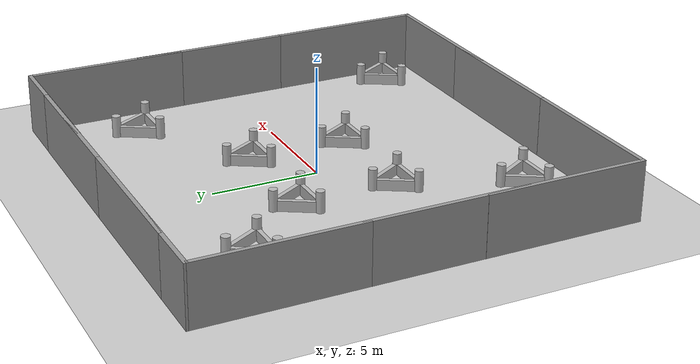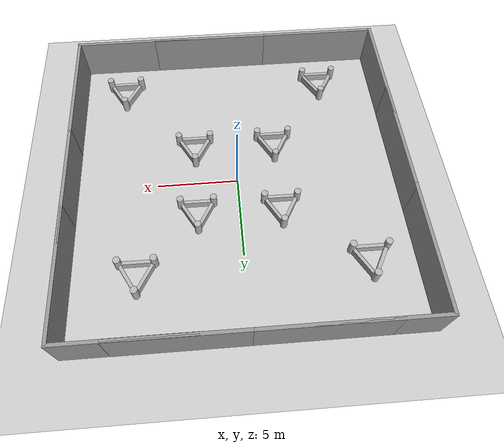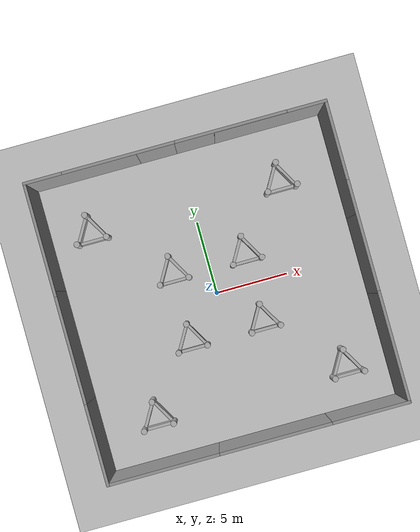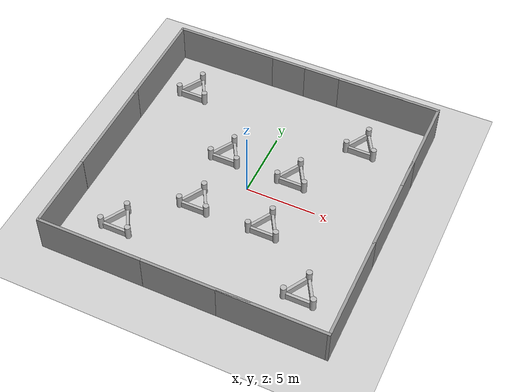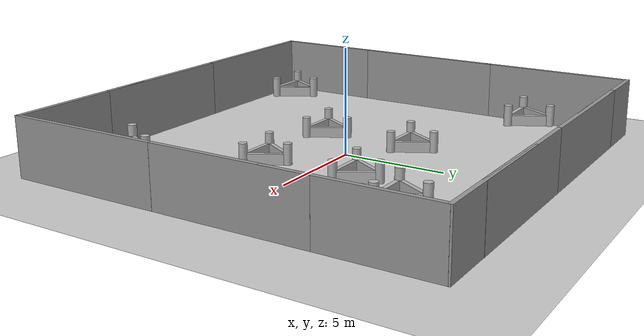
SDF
<sdf version="1.7">
 <world name="default">
  <light name="sun" type="directional">
   <pose>0 0 10 0 -0 0</pose>
   <diffuse>0.8 0.8 0.8 1</diffuse>
   <specular>0.2 0.2 0.2 1</specular>
   <attenuation>
    <range>1000</range>
    <constant>0.9</constant>
    <linear>0.01</linear>
    <quadratic>0.001</quadratic>
   </attenuation>
   <direction>-0.5 0.1 -0.9</direction>
   <spot><inner_angle>0</inner_angle><outer_angle>0</outer_angle><falloff>0</falloff></spot>
  </light>
  <model name="ground_plane">
   <static>1</static>
   <link name="link">
    <collision name="collision">
     <geometry><plane><normal>0 0 1</normal><size>100 100</size></plane></geometry>
     <surface><friction><ode><mu>100</mu><mu2>50</mu2></ode></friction></surface>
    </collision>
    <visual name="visual">
     <cast_shadows>0</cast_shadows>
     <geometry><plane><normal>0 0 1</normal><size>100 100</size></plane></geometry>
     <material>
      <script><uri>file://media/materials/scripts/gazebo.material</uri><name>Gazebo/Grey</name></script>
     </material>
    </visual>
   </link>
  </model>
  <gravity>0 0 -9.8</gravity>
  <magnetic_field>6e-06 2.3e-05 -4.2e-05</magnetic_field>
  <atmosphere type="adiabatic"/>
  <physics type="ode">
   <max_step_size>0.001</max_step_size>
   <real_time_factor>1</real_time_factor>
   <real_time_update_rate>1000</real_time_update_rate>
  </physics>
  <scene><ambient>0.4 0.4 0.4 1</ambient><background>0.7 0.7 0.7 1</background><shadows>1</shadows></scene>
  <spherical_coordinates>
   <surface_model>EARTH_WGS84</surface_model>
   <latitude_deg>0</latitude_deg>
   <longitude_deg>0</longitude_deg>
   <elevation>0</elevation>
   <heading_deg>0</heading_deg>
  </spherical_coordinates>
  <model name="grey_wall">
   <static>1</static>
   <link name="link">
    <pose>0 0 1.4 0 -0 0</pose>
    <collision name="collision"><geometry><box><size>7.5 0.2 2.8</size></box></geometry></collision>
    <visual name="visual">
     <cast_shadows>0</cast_shadows>
     <geometry><box><size>7.5 0.2 2.8</size></box></geometry>
     <material>
      <script>
       <uri>model://grey_wall/materials/scripts</uri>
       <uri>model://grey_wall/materials/textures</uri>
       <name>vrc/grey_wall</name>
      </script>
     </material>
    </visual>
   </link>
   <pose>-3.78324 10.0124 0 0 -0 0</pose>
  </model>
  <model name="grey_wall_0">
   <static>1</static>
   <link name="link">
    <pose>0 0 1.4 0 -0 0</pose>
    <collision name="collision"><geometry><box><size>7.5 0.2 2.8</size></box></geometry></collision>
    <visual name="visual">
     <cast_shadows>0</cast_shadows>
     <geometry><box><size>7.5 0.2 2.8</size></box></geometry>
     <material>
      <script>
       <uri>model://grey_wall/materials/scripts</uri>
       <uri>model://grey_wall/materials/textures</uri>
       <name>vrc/grey_wall</name>
      </script>
     </material>
    </visual>
   </link>
   <pose>-6.3648 10.0121 -0 0 -0 0</pose>
  </model>
  <model name="grey_wall_clone">
   <static>1</static>
   <link name="link">
    <pose>0 0 1.4 0 -0 0</pose>
    <collision name="collision"><geometry><box><size>7.5 0.2 2.8</size></box></geometry></collision>
    <visual name="visual">
     <cast_shadows>0</cast_shadows>
     <geometry><box><size>7.5 0.2 2.8</size></box></geometry>
     <material>
      <script>
       <uri>model://grey_wall/materials/scripts</uri>
       <uri>model://grey_wall/materials/textures</uri>
       <name>vrc/grey_wall</name>
      </script>
     </material>
    </visual>
   </link>
   <pose>3.67074 10.0122 0 0 -0 0</pose>
  </model>
  <model name="grey_wall_clone_0">
   <static>1</static>
   <link name="link">
    <pose>0 0 1.4 0 -0 0</pose>
    <collision name="collision"><geometry><box><size>7.5 0.2 2.8</size></box></geometry></collision>
    <visual name="visual">
     <cast_shadows>0</cast_shadows>
     <geometry><box><size>7.5 0.2 2.8</size></box></geometry>
     <material>
      <script>
       <uri>model://grey_wall/materials/scripts</uri>
       <uri>model://grey_wall/materials/textures</uri>
       <name>vrc/grey_wall</name>
      </script>
     </material>
    </visual>
   </link>
   <pose>6.3272 10.0037 0 0 -0 0</pose>
  </model>
  <model name="grey_wall_clone_1">
   <static>1</static>
   <link name="link">
    <pose>0 0 1.4 0 -0 0</pose>
    <collision name="collision"><geometry><box><size>7.5 0.2 2.8</size></box></geometry></collision>
    <visual name="visual">
     <cast_shadows>0</cast_shadows>
     <geometry><box><size>7.5 0.2 2.8</size></box></geometry>
     <material>
      <script>
       <uri>model://grey_wall/materials/scripts</uri>
       <uri>model://grey_wall/materials/textures</uri>
       <name>vrc/grey_wall</name>
      </script>
     </material>
    </visual>
   </link>
   <pose>-10.0074 6.25296 0 0 0 -1.56857</pose>
  </model>
  <model name="grey_wall_clone_1_clone">
   <static>1</static>
   <link name="link">
    <pose>0 0 1.4 0 -0 0</pose>
    <collision name="collision"><geometry><box><size>7.5 0.2 2.8</size></box></geometry></collision>
    <visual name="visual">
     <cast_shadows>0</cast_shadows>
     <geometry><box><size>7.5 0.2 2.8</size></box></geometry>
     <material>
      <script>
       <uri>model://grey_wall/materials/scripts</uri>
       <uri>model://grey_wall/materials/textures</uri>
       <name>vrc/grey_wall</name>
      </script>
     </material>
    </visual>
   </link>
   <pose>-9.99148 -0.887429 0 0 0 -1.56857</pose>
  </model>
  <model name="grey_wall_clone_1_clone_0">
   <static>1</static>
   <link name="link">
    <pose>0 0 1.4 0 -0 0</pose>
    <collision name="collision"><geometry><box><size>7.5 0.2 2.8</size></box></geometry></collision>
    <visual name="visual">
     <cast_shadows>0</cast_shadows>
     <geometry><box><size>7.5 0.2 2.8</size></box></geometry>
     <material>
      <script>
       <uri>model://grey_wall/materials/scripts</uri>
       <uri>model://grey_wall/materials/textures</uri>
       <name>vrc/grey_wall</name>
      </script>
     </material>
    </visual>
   </link>
   <pose>-9.98622 -6.33894 0 0 0 -1.56857</pose>
  </model>
  <model name="grey_wall_0_clone">
   <static>1</static>
   <link name="link">
    <pose>0 0 1.4 0 -0 0</pose>
    <collision name="collision"><geometry><box><size>7.5 0.2 2.8</size></box></geometry></collision>
    <visual name="visual">
     <cast_shadows>0</cast_shadows>
     <geometry><box><size>7.5 0.2 2.8</size></box></geometry>
     <material>
      <script>
       <uri>model://grey_wall/materials/scripts</uri>
       <uri>model://grey_wall/materials/textures</uri>
       <name>vrc/grey_wall</name>
      </script>
     </material>
    </visual>
   </link>
   <pose>-6.31777 -9.99698 0 0 -0 0</pose>
  </model>
  <model name="grey_wall_0_clone_0">
   <static>1</static>
   <link name="link">
    <pose>0 0 1.4 0 -0 0</pose>
    <collision name="collision"><geometry><box><size>7.5 0.2 2.8</size></box></geometry></collision>
    <visual name="visual">
     <cast_shadows>0</cast_shadows>
     <geometry><box><size>7.5 0.2 2.8</size></box></geometry>
     <material>
      <script>
       <uri>model://grey_wall/materials/scripts</uri>
       <uri>model://grey_wall/materials/textures</uri>
       <name>vrc/grey_wall</name>
      </script>
     </material>
    </visual>
   </link>
   <pose>1.17363 -9.99445 0 0 -0 0</pose>
  </model>
  <model name="grey_wall_0_clone_1">
   <static>1</static>
   <link name="link">
    <pose>0 0 1.4 0 -0 0</pose>
    <collision name="collision"><geometry><box><size>7.5 0.2 2.8</size></box></geometry></collision>
    <visual name="visual">
     <cast_shadows>0</cast_shadows>
     <geometry><box><size>7.5 0.2 2.8</size></box></geometry>
     <material>
      <script>
       <uri>model://grey_wall/materials/scripts</uri>
       <uri>model://grey_wall/materials/textures</uri>
       <name>vrc/grey_wall</name>
      </script>
     </material>
    </visual>
   </link>
   <pose>6.35644 -9.99489 0 0 -0 0</pose>
  </model>
  <model name="grey_wall_clone_1_clone_0_clone">
   <static>1</static>
   <link name="link">
    <pose>0 0 1.4 0 -0 0</pose>
    <collision name="collision"><geometry><box><size>7.5 0.2 2.8</size></box></geometry></collision>
    <visual name="visual">
     <cast_shadows>0</cast_shadows>
     <geometry><box><size>7.5 0.2 2.8</size></box></geometry>
     <material>
      <script>
       <uri>model://grey_wall/materials/scripts</uri>
       <uri>model://grey_wall/materials/textures</uri>
       <name>vrc/grey_wall</name>
      </script>
     </material>
    </visual>
   </link>
   <pose>10.0252 -6.34974 0 0 0 -1.56857</pose>
  </model>
  <model name="grey_wall_clone_1_clone_0_clone_clone">
   <static>1</static>
   <link name="link">
    <pose>0 0 1.4 0 -0 0</pose>
    <collision name="collision"><geometry><box><size>7.5 0.2 2.8</size></box></geometry></collision>
    <visual name="visual">
     <cast_shadows>0</cast_shadows>
     <geometry><box><size>7.5 0.2 2.8</size></box></geometry>
     <material>
      <script>
       <uri>model://grey_wall/materials/scripts</uri>
       <uri>model://grey_wall/materials/textures</uri>
       <name>vrc/grey_wall</name>
      </script>
     </material>
    </visual>
   </link>
   <pose>10.0062 1.01743 0 0 0 -1.56857</pose>
  </model>
  <model name="grey_wall_clone_1_clone_0_clone_clone_0">
   <static>1</static>
   <link name="link">
    <pose>0 0 1.4 0 -0 0</pose>
    <collision name="collision"><geometry><box><size>7.5 0.2 2.8</size></box></geometry></collision>
    <visual name="visual">
     <cast_shadows>0</cast_shadows>
     <geometry><box><size>7.5 0.2 2.8</size></box></geometry>
     <material>
      <script>
       <uri>model://grey_wall/materials/scripts</uri>
       <uri>model://grey_wall/materials/textures</uri>
       <name>vrc/grey_wall</name>
      </script>
     </material>
    </visual>
   </link>
   <pose>9.99096 6.26154 0 0 0 -1.56857</pose>
  </model>
  <model name="custom_mid_obj">
   <pose>-3.52158 1.52233 0.5 3e-06 -4e-06 0.000139</pose>
   <static>0</static>
   <link name="link">
    <inertial>
     <mass>1</mass>
     <inertia><ixx>0.083</ixx><ixy>0</ixy><ixz>0</ixz><iyy>0.083</iyy><iyz>0</iyz><izz>0.083</izz></inertia>
    </inertial>
    <collision name="collision1_cyl">
     <geometry><cylinder><length>1</length><radius>0.2</radius></cylinder></geometry>
    </collision>
    <visual name="visual1_cyl">
     <geometry><cylinder><length>1</length><radius>0.2</radius></cylinder></geometry>
    </visual>
    <collision name="collision1_box">
     <pose>1 0 -0.25 0 -0 0</pose>
     <geometry><box><size>2 0.2 0.5</size></box></geometry>
    </collision>
    <visual name="visual1_box">
     <pose>1 0 -0.25 0 -0 0</pose>
     <geometry><box><size>2 0.2 0.5</size></box></geometry>
    </visual>
    <collision name="collision1_cy2">
     <pose>2 0 0 0 -0 0</pose>
     <geometry><cylinder><length>1</length><radius>0.2</radius></cylinder></geometry>
    </collision>
    <visual name="visual1_cy2">
     <pose>2 0 0 0 -0 0</pose>
     <geometry><cylinder><length>1</length><radius>0.2</radius></cylinder></geometry>
    </visual>
    <collision name="collision2_box">
     <pose>1.5 0.866 -0.25 0 -0 2.0944</pose>
     <geometry><box><size>2 0.2 0.5</size></box></geometry>
    </collision>
    <visual name="visual2_box">
     <pose>1.5 0.866 -0.25 0 -0 2.0944</pose>
     <geometry><box><size>2 0.2 0.5</size></box></geometry>
    </visual>
    <collision name="collision1_cy3">
     <pose>1 1.732 0 0 -0 0</pose>
     <geometry><cylinder><length>1</length><radius>0.2</radius></cylinder></geometry>
    </collision>
    <visual name="visual1_cy3">
     <pose>1 1.732 0 0 -0 0</pose>
     <geometry><cylinder><length>1</length><radius>0.2</radius></cylinder></geometry>
    </visual>
    <collision name="collision3_box">
     <pose>0.5 0.866 -0.25 0 -0 1.0472</pose>
     <geometry><box><size>2 0.2 0.5</size></box></geometry>
    </collision>
    <visual name="visual3_box">
     <pose>0.5 0.866 -0.25 0 -0 1.0472</pose>
     <geometry><box><size>2 0.2 0.5</size></box></geometry>
    </visual>
   </link>
  </model>
  <model name="custom_mid_obj_clone">
   <pose>1.56927 1.52234 0.5 -0 -1e-06 0.000141</pose>
   <static>0</static>
   <link name="link">
    <inertial>
     <mass>1</mass>
     <inertia><ixx>0.083</ixx><ixy>0</ixy><ixz>0</ixz><iyy>0.083</iyy><iyz>0</iyz><izz>0.083</izz></inertia>
    </inertial>
    <collision name="collision1_cyl">
     <geometry><cylinder><length>1</length><radius>0.2</radius></cylinder></geometry>
    </collision>
    <visual name="visual1_cyl">
     <geometry><cylinder><length>1</length><radius>0.2</radius></cylinder></geometry>
    </visual>
    <collision name="collision1_box">
     <pose>1 0 -0.25 0 -0 0</pose>
     <geometry><box><size>2 0.2 0.5</size></box></geometry>
    </collision>
    <visual name="visual1_box">
     <pose>1 0 -0.25 0 -0 0</pose>
     <geometry><box><size>2 0.2 0.5</size></box></geometry>
    </visual>
    <collision name="collision1_cy2">
     <pose>2 0 0 0 -0 0</pose>
     <geometry><cylinder><length>1</length><radius>0.2</radius></cylinder></geometry>
    </collision>
    <visual name="visual1_cy2">
     <pose>2 0 0 0 -0 0</pose>
     <geometry><cylinder><length>1</length><radius>0.2</radius></cylinder></geometry>
    </visual>
    <collision name="collision2_box">
     <pose>1.5 0.866 -0.25 0 -0 2.0944</pose>
     <geometry><box><size>2 0.2 0.5</size></box></geometry>
    </collision>
    <visual name="visual2_box">
     <pose>1.5 0.866 -0.25 0 -0 2.0944</pose>
     <geometry><box><size>2 0.2 0.5</size></box></geometry>
    </visual>
    <collision name="collision1_cy3">
     <pose>1 1.732 0 0 -0 0</pose>
     <geometry><cylinder><length>1</length><radius>0.2</radius></cylinder></geometry>
    </collision>
    <visual name="visual1_cy3">
     <pose>1 1.732 0 0 -0 0</pose>
     <geometry><cylinder><length>1</length><radius>0.2</radius></cylinder></geometry>
    </visual>
    <collision name="collision3_box">
     <pose>0.5 0.866 -0.25 0 -0 1.0472</pose>
     <geometry><box><size>2 0.2 0.5</size></box></geometry>
    </collision>
    <visual name="visual3_box">
     <pose>0.5 0.866 -0.25 0 -0 1.0472</pose>
     <geometry><box><size>2 0.2 0.5</size></box></geometry>
    </visual>
   </link>
  </model>
  <model name="custom_mid_obj_clone_clone">
   <pose>-3.52167 -3.20382 0.5 0 -0 0.000145</pose>
   <static>0</static>
   <link name="link">
    <inertial>
     <mass>1</mass>
     <inertia><ixx>0.083</ixx><ixy>0</ixy><ixz>0</ixz><iyy>0.083</iyy><iyz>0</iyz><izz>0.083</izz></inertia>
    </inertial>
    <collision name="collision1_cyl">
     <geometry><cylinder><length>1</length><radius>0.2</radius></cylinder></geometry>
    </collision>
    <visual name="visual1_cyl">
     <geometry><cylinder><length>1</length><radius>0.2</radius></cylinder></geometry>
    </visual>
    <collision name="collision1_box">
     <pose>1 0 -0.25 0 -0 0</pose>
     <geometry><box><size>2 0.2 0.5</size></box></geometry>
    </collision>
    <visual name="visual1_box">
     <pose>1 0 -0.25 0 -0 0</pose>
     <geometry><box><size>2 0.2 0.5</size></box></geometry>
    </visual>
    <collision name="collision1_cy2">
     <pose>2 0 0 0 -0 0</pose>
     <geometry><cylinder><length>1</length><radius>0.2</radius></cylinder></geometry>
    </collision>
    <visual name="visual1_cy2">
     <pose>2 0 0 0 -0 0</pose>
     <geometry><cylinder><length>1</length><radius>0.2</radius></cylinder></geometry>
    </visual>
    <collision name="collision2_box">
     <pose>1.5 0.866 -0.25 0 -0 2.0944</pose>
     <geometry><box><size>2 0.2 0.5</size></box></geometry>
    </collision>
    <visual name="visual2_box">
     <pose>1.5 0.866 -0.25 0 -0 2.0944</pose>
     <geometry><box><size>2 0.2 0.5</size></box></geometry>
    </visual>
    <collision name="collision1_cy3">
     <pose>1 1.732 0 0 -0 0</pose>
     <geometry><cylinder><length>1</length><radius>0.2</radius></cylinder></geometry>
    </collision>
    <visual name="visual1_cy3">
     <pose>1 1.732 0 0 -0 0</pose>
     <geometry><cylinder><length>1</length><radius>0.2</radius></cylinder></geometry>
    </visual>
    <collision name="collision3_box">
     <pose>0.5 0.866 -0.25 0 -0 1.0472</pose>
     <geometry><box><size>2 0.2 0.5</size></box></geometry>
    </collision>
    <visual name="visual3_box">
     <pose>0.5 0.866 -0.25 0 -0 1.0472</pose>
     <geometry><box><size>2 0.2 0.5</size></box></geometry>
    </visual>
   </link>
  </model>
  <model name="custom_mid_obj_clone_clone_0">
   <pose>1.56928 -3.20383 0.5 4e-06 -4e-06 0.00015</pose>
   <static>0</static>
   <link name="link">
    <inertial>
     <mass>1</mass>
     <inertia><ixx>0.083</ixx><ixy>0</ixy><ixz>0</ixz><iyy>0.083</iyy><iyz>0</iyz><izz>0.083</izz></inertia>
    </inertial>
    <collision name="collision1_cyl">
     <geometry><cylinder><length>1</length><radius>0.2</radius></cylinder></geometry>
    </collision>
    <visual name="visual1_cyl">
     <geometry><cylinder><length>1</length><radius>0.2</radius></cylinder></geometry>
    </visual>
    <collision name="collision1_box">
     <pose>1 0 -0.25 0 -0 0</pose>
     <geometry><box><size>2 0.2 0.5</size></box></geometry>
    </collision>
    <visual name="visual1_box">
     <pose>1 0 -0.25 0 -0 0</pose>
     <geometry><box><size>2 0.2 0.5</size></box></geometry>
    </visual>
    <collision name="collision1_cy2">
     <pose>2 0 0 0 -0 0</pose>
     <geometry><cylinder><length>1</length><radius>0.2</radius></cylinder></geometry>
    </collision>
    <visual name="visual1_cy2">
     <pose>2 0 0 0 -0 0</pose>
     <geometry><cylinder><length>1</length><radius>0.2</radius></cylinder></geometry>
    </visual>
    <collision name="collision2_box">
     <pose>1.5 0.866 -0.25 0 -0 2.0944</pose>
     <geometry><box><size>2 0.2 0.5</size></box></geometry>
    </collision>
    <visual name="visual2_box">
     <pose>1.5 0.866 -0.25 0 -0 2.0944</pose>
     <geometry><box><size>2 0.2 0.5</size></box></geometry>
    </visual>
    <collision name="collision1_cy3">
     <pose>1 1.732 0 0 -0 0</pose>
     <geometry><cylinder><length>1</length><radius>0.2</radius></cylinder></geometry>
    </collision>
    <visual name="visual1_cy3">
     <pose>1 1.732 0 0 -0 0</pose>
     <geometry><cylinder><length>1</length><radius>0.2</radius></cylinder></geometry>
    </visual>
    <collision name="collision3_box">
     <pose>0.5 0.866 -0.25 0 -0 1.0472</pose>
     <geometry><box><size>2 0.2 0.5</size></box></geometry>
    </collision>
    <visual name="visual3_box">
     <pose>0.5 0.866 -0.25 0 -0 1.0472</pose>
     <geometry><box><size>2 0.2 0.5</size></box></geometry>
    </visual>
   </link>
  </model>
  <model name="moving_obj_bottom">
   <pose>-7 -7.5 0 0 0 0</pose>
   <static>false</static>
   <include><uri>/home/hwjoe/sim_ws/src/mid_project/models/custom_mid_obj</uri></include>
   <plugin name="moving_plugin_bottom" filename="libmoving_plugin_bottom.so">
    <linear_vel>0.4</linear_vel>
    <iterations>30000</iterations>
   </plugin>
  </model>
  <model name="moving_obj_top">
   <pose>5 5.5 0 0 0 0</pose>
   <static>false</static>
   <include><uri>/home/hwjoe/sim_ws/src/mid_project/models/custom_mid_obj</uri></include>
   <plugin name="moving_plugin_top" filename="libmoving_plugin_top.so">
    <linear_vel>0.4</linear_vel>
    <iterations>30000</iterations>
   </plugin>
  </model>
  <model name="moving_obj_right">
   <pose>6 -7.5 0 0 0 0</pose>
   <static>false</static>
   <include><uri>/home/hwjoe/sim_ws/src/mid_project/models/custom_mid_obj</uri></include>
   <plugin name="moving_plugin_right" filename="libmoving_plugin_right.so">
    <linear_vel>0.4</linear_vel>
    <iterations>30000</iterations>
   </plugin>
  </model>
  <model name="moving_obj_left">
   <pose>-8 5.5 0 0 0 0</pose>
   <static>false</static>
   <include><uri>/home/hwjoe/sim_ws/src/mid_project/models/custom_mid_obj</uri></include>
   <plugin name="moving_plugin_left" filename="libmoving_plugin_left.so">
    <linear_vel>0.4</linear_vel>
    <iterations>30000</iterations>
   </plugin>
  </model>
 </world>
</sdf>

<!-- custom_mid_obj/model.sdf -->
<sdf version="1.4">
    <model name="custom_mid_obj">
        <pose>0 0 1.3 0 0 0</pose>
        <static>false</static>
        <link name="link">

            <inertial>
                <mass>1.0</mass>
                <inertia>
                    <ixx>0.083</ixx>
                    <ixy>0.0</ixy>
                    <ixz>0.0</ixz>
                    <iyy>0.083</iyy>
                    <iyz>0.0</iyz>
                    <izz>0.083</izz>
                </inertia>
            </inertial>

            <collision name="collision1_cyl">
                <geometry>
                    <cylinder>
                        <length>1.0</length>
                        <radius>0.2</radius>
                    </cylinder>
                </geometry>
            </collision>
            <visual name="visual1_cyl">
                <geometry>
                    <cylinder>
                        <length>1.0</length>
                        <radius>0.2</radius>
                    </cylinder>
                </geometry>
            </visual>

            <collision name="collision1_box">
            <pose>1 0 -0.25 0 0 0</pose>
                <geometry>
                    <box>
                        <size>2 0.2 0.5</size>
                    </box>
                </geometry>
            </collision>
            <visual name="visual1_box">
            <pose>1 0 -0.25 0 0 0</pose>
                <geometry>
                    <box>
                        <size>2 0.2 0.5</size>
                    </box>
                </geometry>
            </visual>

            <collision name="collision1_cy2">
            <pose>2 0 0 0 0 0</pose>
                <geometry>
                    <cylinder>
                        <length>1.0</length>
                        <radius>0.2</radius>
                    </cylinder>
                </geometry>
            </collision>
            <visual name="visual1_cy2">
            <pose>2 0 0 0 0 0</pose>
                <geometry>
                    <cylinder>
                        <length>1.0</length>
                        <radius>0.2</radius>
                    </cylinder>
                </geometry>
            </visual>

            <collision name="collision2_box">
            <pose>1.5 0.866 -0.25 0 0 2.0944</pose>
                <geometry>
                    <box>
                        <size>2 0.2 0.5</size>
                    </box>
                </geometry>
            </collision>
            <visual name="visual2_box">
            <pose>1.5 0.866 -0.25 0 0 2.0944</pose>
                <geometry>
                    <box>
                        <size>2 0.2 0.5</size>
                    </box>
                </geometry>
            </visual>

            <collision name="collision1_cy3">
            <pose>1 1.732 0 0 0 0</pose>
                <geometry>
                    <cylinder>
                        <length>1.0</length>
                        <radius>0.2</radius>
                    </cylinder>
                </geometry>
            </collision>
            <visual name="visual1_cy3">
            <pose>1 1.732 0 0 0 0</pose>
                <geometry>
                    <cylinder>
                        <length>1.0</length>
                        <radius>0.2</radius>
                    </cylinder>
                </geometry>
            </visual>

            <collision name="collision3_box">
            <pose>0.5 0.866 -0.25 0 0 1.0472</pose>
                <geometry>
                    <box>
                        <size>2 0.2 0.5</size>
                    </box>
                </geometry>
            </collision>
            <visual name="visual3_box">
            <pose>0.5 0.866 -0.25 0 0 1.0472</pose>
                <geometry>
                    <box>
                        <size>2 0.2 0.5</size>
                    </box>
                </geometry>
            </visual>

        </link>
    </model>
</sdf>
